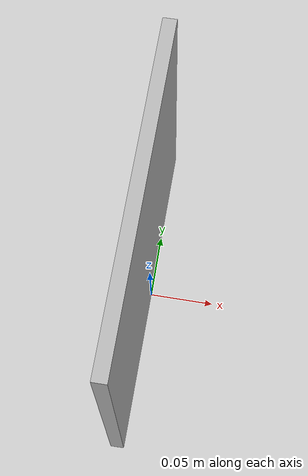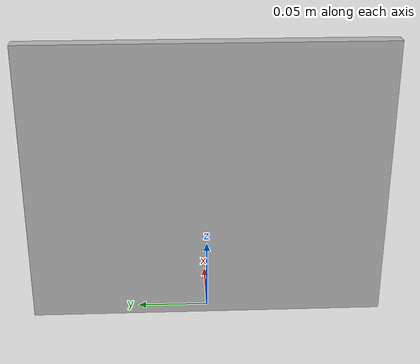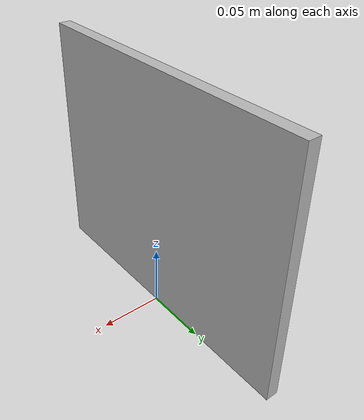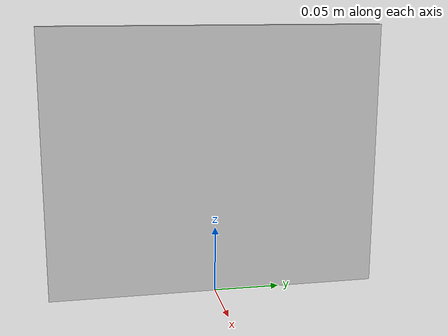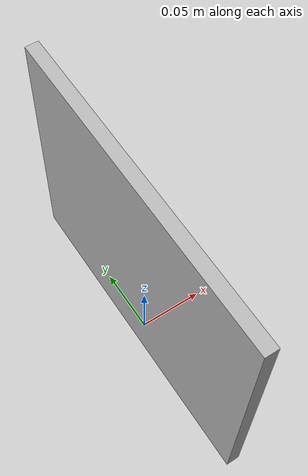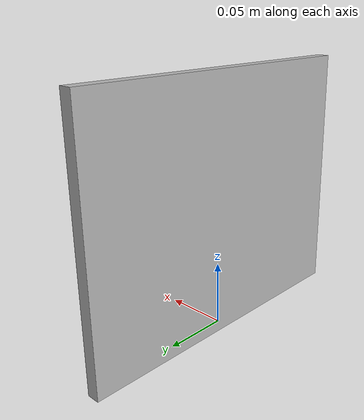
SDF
<?xml version="1.0" ?>

<sdf version="1.9">
  <!-- Model of the support wall -->
  <model name="support_wall">
    <static>true</static>
    <link name="wall_link">
      <collision name="wall_collision">
        <pose>-0.005 0 0.1 0 0 0</pose>
        <geometry>
          <box>
            <size>0.01 0.25 0.2</size>
          </box>
        </geometry>
        <surface>
          <friction>
            <ode>
              <mu>0.0001</mu>
              <mu2>0.0001</mu2>
            </ode>
          </friction>
        </surface>
      </collision>

      <visual name="wall_visual">
        <pose>-0.005 0 0.1 0 0 0</pose>
        <geometry>
          <box>
            <size>0.01 0.25 0.2</size>
          </box>
        </geometry>
      </visual>
    </link>
  </model>
</sdf>
